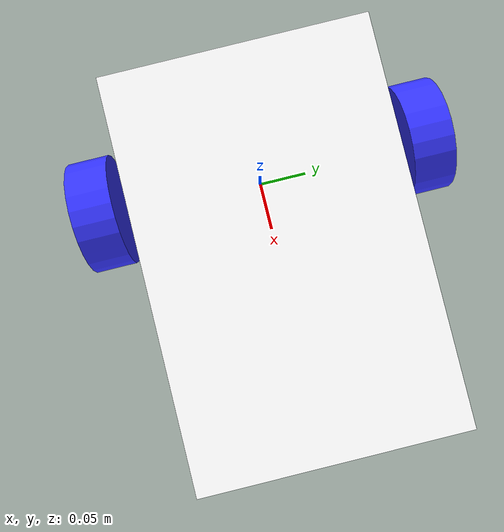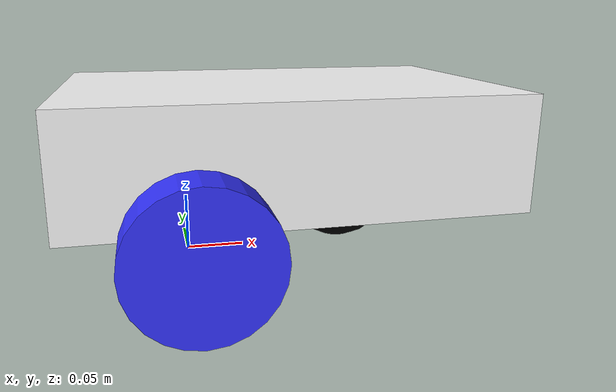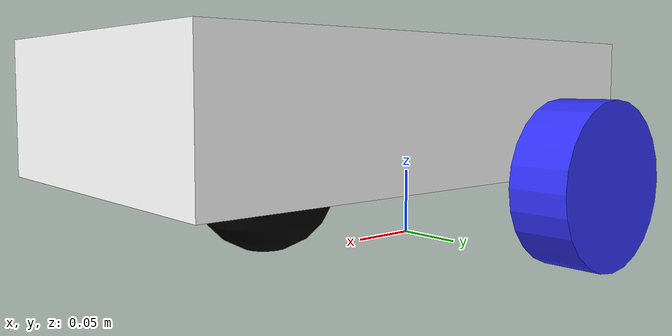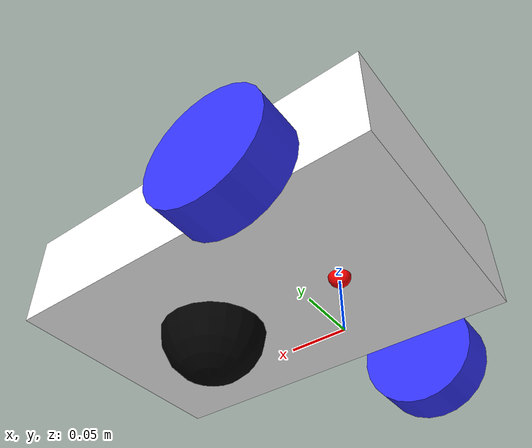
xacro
<?xml version="1.0"?>
<robot xmlns:xacro="http://www.ros.org/wiki/xacro" >

    <xacro:include filename="inertial_macros.xacro"/>

    <!-- Wheel parameters -->
    <xacro:property name="wheel_diameter" value="0.11"/> <!-- 11.0 cm -->
    <xacro:property name="wheel_separation" value="0.32"/> <!-- 32.0 cm -->
    <xacro:property name="wheel_radius" value="${wheel_diameter/2}"/>

    <material name="white">
        <color rgba="1 1 1 1" />
    </material>

    <material name="orange">
        <color rgba="1 0.3 0.1 1"/>
    </material>

    <material name="blue">
        <color rgba="0.2 0.2 1 1"/>
    </material>

    <material name="black">
        <color rgba="0 0 0 1"/>
    </material>

    <material name="red">
        <color rgba="1 0 0 1"/>
    </material>

    <!-- BASE FOOTPRINT LINK -->
    <link name="base_footprint">
    </link>

    <!-- BASE LINK -->
    <joint name="base_footprint_joint" type="fixed">
        <parent link="base_footprint"/>
        <child link="base_link"/>
        <origin xyz="0 0 ${wheel_radius}"/>  <!-- Lift the robot by wheel radius -->
    </joint>

    <!-- This is the actual physical base of the robot -->
    <link name="base_link">
        <!-- Remove visual or make it a small reference point -->
        <visual>
            <geometry>
                <sphere radius="0.01"/>  <!-- Small sphere as reference -->
            </geometry>
            <material name="red"/>
        </visual>
        <!-- Remove any collision geometry from base_link -->
        <!-- The chassis will handle all collisions -->
    </link>

    <!-- CHASSIS LINK -->
    <joint name="chassis_joint" type="fixed">
        <parent link="base_link"/>
        <child link="chassis"/>
        <origin xyz="-0.1 0 0"/>
    </joint>

    <link name="chassis">
        <visual>
            <origin xyz="0.1825 0 0.0475"/>
            <geometry>
                <box size="0.365 0.24 0.095"/>
            </geometry>
            <material name="white"/>
        </visual>
        <collision>
            <origin xyz="0.1825 0 0.0475"/>
            <geometry>
                <box size="0.365 0.24 0.095"/>
            </geometry>
        </collision>
        <xacro:inertial_box mass="0.5" x="0.365" y="0.24" z="0.095">
            <origin xyz="0.1825 0 0.0475" rpy="0 0 0"/>
        </xacro:inertial_box>
    </link>

    <gazebo reference="chassis">
        <material>Gazebo/White</material>
    </gazebo>

    <!-- LEFT WHEEL LINK -->
    <joint name="left_wheel_joint" type="continuous">
        <parent link="base_link"/>
        <child link="left_wheel"/>
        <origin xyz="0 ${wheel_separation/2} 0" rpy="-${pi/2} 0 0" />
        <axis xyz="0 0 1"/>
    </joint>

    <link name="left_wheel">
        <visual>
            <geometry>
                <cylinder radius="${wheel_radius}" length="0.04"/>
            </geometry>
            <material name="blue"/>
        </visual>
        <collision>
            <geometry>
                <cylinder radius="${wheel_radius}" length="0.04"/>
            </geometry>
        </collision>
        <xacro:inertial_cylinder mass="0.1" length="0.04" radius="${wheel_radius}">
            <origin xyz="0 0 0" rpy="0 0 0"/>
        </xacro:inertial_cylinder>
    </link>

    <gazebo reference="left_wheel">
        <material>Gazebo/Blue</material>
    </gazebo>

    <!-- RIGHT WHEEL LINK -->
    <joint name="right_wheel_joint" type="continuous">
        <parent link="base_link"/>
        <child link="right_wheel"/>
        <origin xyz="0 -${wheel_separation/2} 0" rpy="${pi/2} 0 0" />
        <axis xyz="0 0 -1"/>
    </joint>

    <link name="right_wheel">
        <visual>
            <geometry>
                <cylinder radius="${wheel_radius}" length="0.04"/>
            </geometry>
            <material name="blue"/>
        </visual>
        <collision>
            <geometry>
                <cylinder radius="${wheel_radius}" length="0.04"/>
            </geometry>
        </collision>
        <xacro:inertial_cylinder mass="0.1" length="0.04" radius="${wheel_radius}">
            <origin xyz="0 0 0" rpy="0 0 0"/>
        </xacro:inertial_cylinder>
    </link>

    <gazebo reference="right_wheel">
        <material>Gazebo/Blue</material>
    </gazebo>

    <!-- CASTER WHEEL LINK -->
    <joint name="caster_wheel_joint" type="fixed">
        <parent link="chassis"/>
        <child link="caster_wheel"/>
        <origin xyz="0.24 0 0"/>
    </joint>

    <link name="caster_wheel">
        <visual>
            <geometry>
                <sphere radius="0.05"/>
            </geometry>
            <material name="black"/>
        </visual>
        <collision>
            <geometry>
                <sphere radius="0.05"/>
            </geometry>
        </collision>
        <xacro:inertial_sphere mass="0.1" radius="0.05">
            <origin xyz="0 0 0" rpy="0 0 0"/>
        </xacro:inertial_sphere>
    </link>

    <gazebo reference="caster_wheel">
        <material>Gazebo/Black</material>
        <mu1 value="0.001"/>
        <mu2 value="0.001"/>
    </gazebo>

</robot>
